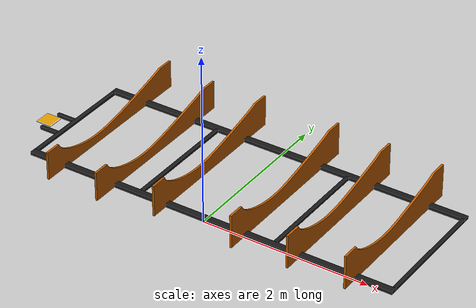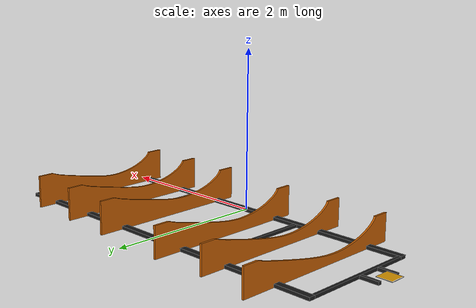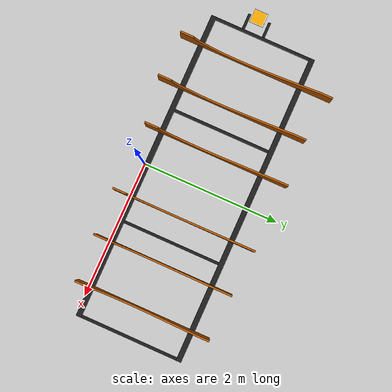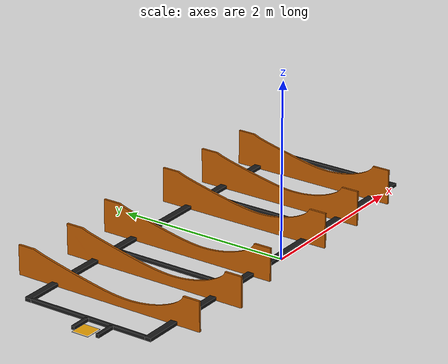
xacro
<?xml version="1.0"?>

<robot name="panel_nest" xmlns:xacro="http://ros.org/wiki/xacro">

<link name="panel_nest">
  <visual name="visual">
    <origin xyz="0 0.0381 0.0195"/>
    <geometry><box size="4.572 0.0762 0.0381"/></geometry>
    <material name="grey">
      <color rgba=".1 .1 .1 1"/>
    </material>
  </visual>
  <visual name="visual">
    <origin xyz="0 1.5381 0.0195"/>
    <geometry><box size="4.572 0.0762 0.0381"/></geometry>
    <material name="grey"/>
  </visual>
  <visual name="visual">
    <origin xyz="-2.2665 0.7881 0.0195"/>
    <geometry><box size="0.0381 1.4238 0.0381"/></geometry>
    <material name="grey"/>
  </visual>
  <visual name="visual">
    <origin xyz="-0.84721 0.7881 0.0195"/>
    <geometry><box size="0.0381 1.4238 0.0381"/></geometry>
    <material name="grey"/>
  </visual>
  <visual name="visual">
    <origin xyz="0.84721 0.7881 0.0195"/>
    <geometry><box size="0.0381 1.4238 0.0381"/></geometry>
    <material name="grey"/>
  </visual>
  <visual name="visual">
    <origin xyz="2.2665 0.7881 0.0195"/>
    <geometry><box size="0.0381 1.4238 0.0381"/></geometry>
    <material name="grey"/>
  </visual>
  <collision name="collision">
    <origin xyz="0 0.7881 0.0195"/>
    <geometry><box size="4.572 1.5762 0.0381"/></geometry>
  </collision>

  <visual name="visual">
    <origin rpy="0 1.5708 0" xyz="-1.8475 -.270 0"/>
    <geometry><mesh filename="package://rpi_arm_composites_manufacturing_testbed/meshes/panel_nest/nest_2_point_1.stl"/></geometry>
    <material name="wood">
      <color rgba=".727 .3476 .0020 1"/>
    </material>
  </visual>
  <collision name="collision">
    <origin rpy="0 1.5708 0" xyz="-1.8475 -.270 0"/>
    <geometry><mesh filename="package://rpi_arm_composites_manufacturing_testbed/meshes/panel_nest/nest_2_point_1.stl"/></geometry>
  </collision>

  <visual name="visual">
    <origin rpy="0 1.5708 0" xyz="-1.1775 -.305 0"/>
    <geometry><mesh filename="package://rpi_arm_composites_manufacturing_testbed/meshes/panel_nest/nest_2_point_2.stl"/></geometry>
    <material name="wood">
      <color rgba=".727 .3476 .0020 1"/>
    </material>
  </visual>
  <collision name="collision">
    <origin rpy="0 1.5708 0" xyz="-1.1775 -.305 0"/>
    <geometry><mesh filename="package://rpi_arm_composites_manufacturing_testbed/meshes/panel_nest/nest_2_point_2.stl"/></geometry>
  </collision>

  <visual name="visual">
    <origin rpy="0 1.5708 0" xyz="-0.5075 -.200 0"/>
    <geometry><mesh filename="package://rpi_arm_composites_manufacturing_testbed/meshes/panel_nest/nest_2_point_3.stl"/></geometry>
    <material name="wood">
      <color rgba=".727 .3476 .0020 1"/>
    </material>
  </visual>
  <collision name="collision">
    <origin rpy="0 1.5708 0" xyz="-0.5075 -.200 0"/>
    <geometry><mesh filename="package://rpi_arm_composites_manufacturing_testbed/meshes/panel_nest/nest_2_point_3.stl"/></geometry>
  </collision>

  <visual name="visual">
    <origin rpy="0 1.5708 0" xyz="0.4822 -.225 0"/>
    <geometry><mesh filename="package://rpi_arm_composites_manufacturing_testbed/meshes/panel_nest/nest_3_point_1.stl"/></geometry>
    <material name="wood">
      <color rgba=".727 .3476 .0020 1"/>
    </material>
  </visual>
  <collision name="collision">
    <origin rpy="0 1.5708 0" xyz="0.4822 -.225 0"/>
    <geometry><mesh filename="package://rpi_arm_composites_manufacturing_testbed/meshes/panel_nest/nest_3_point_1.stl"/></geometry>
  </collision>

  <visual name="visual">
    <origin rpy="0 1.5708 0" xyz="1.1525 -.200 0"/>
    <geometry><mesh filename="package://rpi_arm_composites_manufacturing_testbed/meshes/panel_nest/nest_3_point_2.stl"/></geometry>
    <material name="wood">
      <color rgba=".727 .3476 .0020 1"/>
    </material>
  </visual>
  <collision name="collision">
    <origin rpy="0 1.5708 0" xyz="1.1525 -.200 0"/>
    <geometry><mesh filename="package://rpi_arm_composites_manufacturing_testbed/meshes/panel_nest/nest_3_point_2.stl"/></geometry>
  </collision>

  <visual name="visual">
    <origin rpy="0 1.5708 0" xyz="1.8225 -.174 0"/>
    <geometry><mesh filename="package://rpi_arm_composites_manufacturing_testbed/meshes/panel_nest/nest_3_point_3.stl"/></geometry>
    <material name="wood">
      <color rgba=".727 .3476 .0020 1"/>
    </material>
  </visual>
  <collision name="collision">
    <origin rpy="0 1.5708 0" xyz="1.8225 -.174 0"/>
    <geometry><mesh filename="package://rpi_arm_composites_manufacturing_testbed/meshes/panel_nest/nest_3_point_3.stl"/></geometry>
  </collision>

  <visual name="visual">
  	<origin rpy="0 0 ${radians(90)}" xyz="-2.42273 0.5302 0.04128"/>
  	<geometry><mesh filename="package://rpi_arm_composites_manufacturing_testbed/meshes/markers/nest_marker.dae"/></geometry>
  </visual>

  <visual name="visual">
    <origin xyz="-2.400 0.483  0.0195"/>
    <geometry><box size="0.2286 0.0381 0.0381"/></geometry>
    <material name="grey">
      <color rgba=".1 .1 .1 1"/>
    </material>
  </visual>

  <visual name="visual">
    <origin xyz="-2.400 0.7878  0.0195"/>
    <geometry><box size="0.2286 0.0381 0.0381"/></geometry>
    <material name="grey">
      <color rgba=".1 .1 .1 1"/>
    </material>
  </visual>

</link>

</robot>
